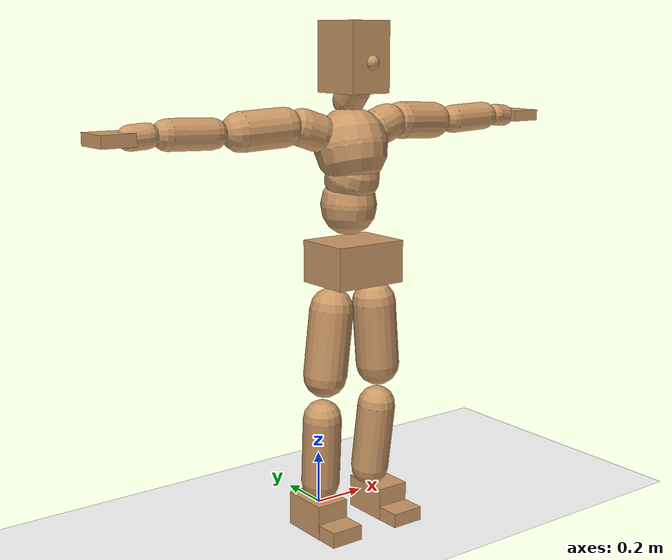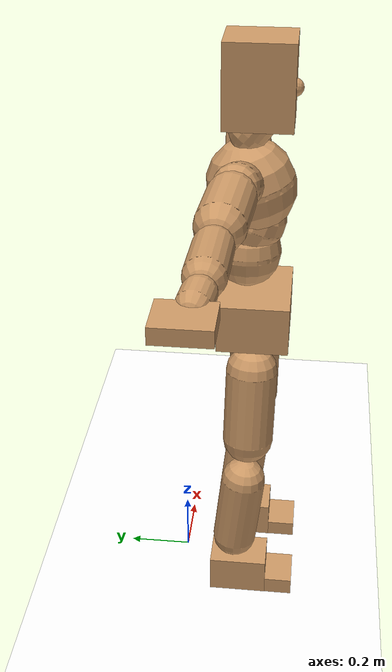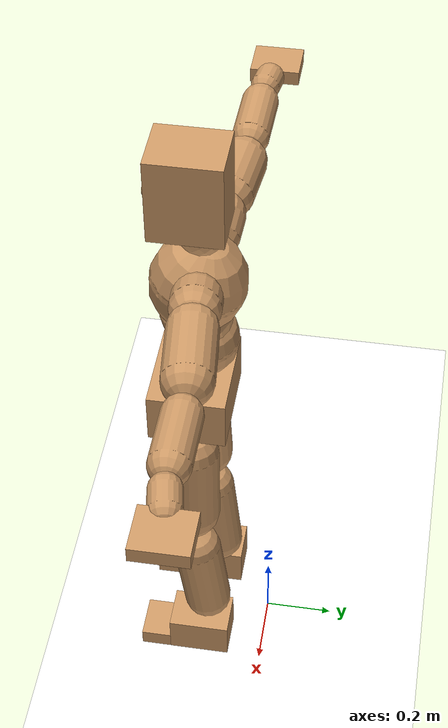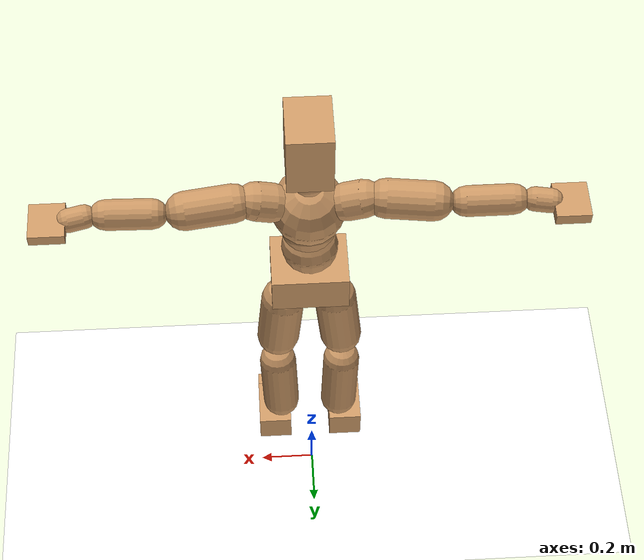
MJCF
<mujoco model="humanoid">
  <option integrator="implicitfast" />

  <visual>
    <global offwidth="1280" offheight="960" />
    <headlight active="1" ambient="0.34 0.34 0.34" diffuse="0.5 0.5 0.5" />
  </visual>

  <default>
    <joint damping="2" stiffness="2" armature="0.01" limited="true" solimplimit="0 .99 .01" />
    <geom condim="1" friction="0.7 0.005 0.0001" solimp=".99 .99 .003" solref="0.015 1" margin="0.001" rgba="0.8 0.6 .4 1" />
    <default class="smplcontact">
      <geom condim="3" friction="1. 0.005 0.0001" solref="0.015 1" solimp="0.98 0.98 0.001" priority="1" />
    </default>
    <default class="stiff_medium">
      <joint stiffness="10" />
    </default>
    <default class="stiff_medium_higher">
      <joint stiffness="50" />
    </default>
    <default class="stiff_high">
      <joint stiffness="100" />
    </default>
  </default>

  <asset>
    <texture type="skybox" builtin="gradient" rgb1="0.99 0.99 0.99" rgb2="0.608 0.828 0.892" width="100" />
    <texture builtin="flat" height="1278" mark="cross" markrgb="1 1 1" name="texgeom" random="0.01" rgb1="0.8 0.6 0.4" rgb2="0.8 0.6 0.4" type="cube" width="127" />
    <texture name="texplane" type="2d" builtin="checker" markrgb="1 1 1" rgb1="0.756 0.772 0.76" rgb2="0.6 0.6 0.6" width="100" height="100" />
    <material name="MatPlane" reflectance="0.5" texture="texplane" texrepeat="1 1" texuniform="true" />
    <material name="geom" texture="texgeom" texuniform="true" />
  </asset>

  <worldbody>
    <light name="tracking_light" pos="0 0 7" dir="0 0 -1" directional="true" cutoff="100" exponent="1" diffuse="1 1 1" specular="0.1 0.1 0.1" mode="trackcom" />
    <camera name="back" pos="0 3 2.4" xyaxes="-1 0 0 0 -1 2" mode="trackcom" />
    <camera name="side" pos="-3 0 2.4" xyaxes="0 -1 0 1 0 2" mode="trackcom" />
    <camera name="front_side" pos="-2.8 -2.8 0.8" xyaxes="0.5 -0.5 0 0.1 0.1 1" mode="trackcom" />
    <geom condim="3" name="floor" pos="0 0 0" rgba="1 1 1 1" size="100 100 .2" type="plane" material="MatPlane" />
    <body name="Pelvis" pos="-0.0018 -0.2233 1.00163" euler="90 0 0">
      <site name="Pelvis" size="0.01" />
      <freejoint name="Pelvis" />
      <geom type="box" pos="0 -0.01273 -0.00715" size="0.13897 0.0759593 0.1079" quat="1.0000 0.0000 0.0000 0.0000" density="3165.830099" name="Pelvis" />
      <body name="L_Hip" pos="0.09035 -0.096159 -0.00884">
        <joint name="L_Hip_x" type="hinge" pos="0 0 0" axis="1 0 0" stiffness="10" range="-160.0 22.92" class="stiff_medium" damping="15" />
        <joint name="L_Hip_y" type="hinge" pos="0 0 0" axis="0 1 0" stiffness="10" range="-70.0 70.0" class="stiff_medium" damping="10" />
        <joint name="L_Hip_z" type="hinge" pos="0 0 0" axis="0 0 1" stiffness="10" range="-28.65 90.0" class="stiff_medium" damping="10" />
        <geom type="capsule" density="2040.816327" fromto="0.00727715 -0.0789034 -0.00094704 0.0288445 -0.315829 -0.00378762" size="0.07995" name="L_Hip" />
        <body name="L_Knee" pos="0.0361217 -0.394733 -0.00473466">
          <joint name="L_Knee_x" type="hinge" pos="0 0 0" axis="1 0 0" range="-5.16 171.89" damping="8" />
          <joint name="L_Knee_y" type="hinge" pos="0 0 0" axis="0 1 0" range="-4.58 6.88" damping="8" />
          <joint name="L_Knee_z" type="hinge" pos="0 0 0" axis="0 0 1" range="-6.88 4.58" damping="8" />
          <geom type="capsule" density="1234.567901" fromto="-0.00283239 -0.0837467 -0.00913669 -0.0114593 -0.33498 -0.0368061" size="0.07033" name="L_Knee" />
          <body name="L_Ankle" pos="-0.0142917 -0.418727 -0.0459428">
            <joint name="L_Ankle_x" type="hinge" pos="0 0 0" axis="1 0 0" range="-45.84 45.84" class="stiff_medium" damping="6" />
            <joint name="L_Ankle_y" type="hinge" pos="0 0 0" axis="0 1 0" range="-74.48 22.92" class="stiff_medium" damping="3" />
            <joint name="L_Ankle_z" type="hinge" pos="0 0 0" axis="0 0 1" range="-4.58 4.58" class="stiff_medium" damping="6" />
            <geom type="box" pos="0.03029 -0.03107 0.0255873" size="0.06279 0.06032 0.0898729" quat="1.0000 0.0000 0.0000 0.0000" density="449.071558" name="L_Ankle" class="smplcontact" />
            <body name="L_Toe" pos="0.03432 -0.07254 0.126139">
              <joint name="L_Toe_x" type="hinge" pos="0 0 0" axis="1 0 0" range="-91.67 22.92" />
              <joint name="L_Toe_y" type="hinge" pos="0 0 0" axis="0 1 0" range="-4.58 4.58" />
              <joint name="L_Toe_z" type="hinge" pos="0 0 0" axis="0 0 1" range="-4.58 4.58" />
              <geom type="box" pos="-0.0039 0.00715 0.0262217" size="0.06214 0.026 0.0524435" quat="1.0000 0.0000 0.0000 0.0000" density="423.206892" name="L_Toe" class="smplcontact" />
            </body>
          </body>
        </body>
      </body>
      <body name="R_Hip" pos="-0.08801 -0.0952121 -0.00559">
        <joint name="R_Hip_x" type="hinge" pos="0 0 0" axis="1 0 0" stiffness="10" range="-160.0 22.92" class="stiff_medium" damping="15" />
        <joint name="R_Hip_y" type="hinge" pos="0 0 0" axis="0 1 0" stiffness="10" range="-70.0 70.0" class="stiff_medium" damping="10" />
        <joint name="R_Hip_z" type="hinge" pos="0 0 0" axis="0 0 1" stiffness="10" range="-90.0 28.65" class="stiff_medium" damping="10" />
        <geom type="capsule" density="2040.816327" fromto="-0.00811808 -0.0804813 -0.00190213 -0.0322104 -0.322036 -0.00747809" size="0.07878" name="R_Hip" />
        <body name="R_Knee" pos="-0.0403285 -0.402517 -0.00938022">
          <joint name="R_Knee_x" type="hinge" pos="0 0 0" axis="1 0 0" range="-5.16 171.89" damping="8" />
          <joint name="R_Knee_y" type="hinge" pos="0 0 0" axis="0 1 0" range="-6.88 4.58" damping="8" />
          <joint name="R_Knee_z" type="hinge" pos="0 0 0" axis="0 0 1" range="-4.58 6.88" damping="8" />
          <geom type="capsule" density="1234.567901" fromto="0.00338273 -0.0838475 -0.00895799 0.0132722 -0.335292 -0.0355753" size="0.07033" name="R_Knee" />
          <body name="R_Ankle" pos="0.0166549 -0.419139 -0.0445333">
            <joint name="R_Ankle_x" type="hinge" pos="0 0 0" axis="1 0 0" range="-45.84 45.84" class="stiff_medium" damping="6" />
            <joint name="R_Ankle_y" type="hinge" pos="0 0 0" axis="0 1 0" range="-22.92 74.48" class="stiff_medium" damping="3" />
            <joint name="R_Ankle_z" type="hinge" pos="0 0 0" axis="0 0 1" range="-4.58 4.58" class="stiff_medium" damping="6" />
            <geom type="box" pos="-0.02756 -0.02262 0.0270676" size="0.06279 0.06214 0.0914589" quat="1.0000 0.0000 0.0000 0.0000" density="434.700981" name="R_Ankle" class="smplcontact" />
            <body name="R_Toe" pos="-0.03302 -0.06253 0.130369">
              <joint name="R_Toe_x" type="hinge" pos="0 0 0" axis="1 0 0" range="-91.67 22.92" />
              <joint name="R_Toe_y" type="hinge" pos="0 0 0" axis="0 1 0" range="-4.58 4.58" />
              <joint name="R_Toe_z" type="hinge" pos="0 0 0" axis="0 0 1" range="-4.58 4.58" />
              <geom type="box" pos="0.00546 0.00585 0.0240013" size="0.06227 0.02808 0.0521263" quat="1.0000 0.0000 0.0000 0.0000" density="407.384095" name="R_Toe" class="smplcontact" />
            </body>
          </body>
        </body>
      </body>
      <body name="Torso" pos="-0.00325 0.114675 -0.03471">
        <joint name="Torso_x" type="hinge" pos="0 0 0" axis="1 0 0" range="-25.78 57.3" class="stiff_medium" damping="15" />
        <joint name="Torso_y" type="hinge" pos="0 0 0" axis="0 1 0" range="-57.3 57.3" class="stiff_high" damping="20" />
        <joint name="Torso_z" type="hinge" pos="0 0 0" axis="0 0 1" range="-34.38 34.38" class="stiff_high" damping="20" />
        <geom type="capsule" density="2040.816327" fromto="0.00269161 0.0639633 0.000538321 0.00321764 0.0781663 0.000643528" size="0.09997" name="Torso" />
        <body name="Spine" pos="0.00590833 0.142235 0.00118167">
          <joint name="Spine_x" type="hinge" pos="0 0 0" axis="1 0 0" stiffness="10" range="-25.78 57.3" class="stiff_medium" damping="15" />
          <joint name="Spine_y" type="hinge" pos="0 0 0" axis="0 1 0" stiffness="10" range="-57.3 57.3" class="stiff_high" damping="8" />
          <joint name="Spine_z" type="hinge" pos="0 0 0" axis="0 0 1" stiffness="20" range="-34.38 34.38" class="stiff_high" damping="12" />
          <geom type="capsule" density="2040.816327" fromto="0.000799156 0.0250653 0.0119381 0.000904363 0.0306412 0.0146734" size="0.09815" name="Spine" />
          <body name="Chest" pos="0.00170352 0.0557065 0.0266115">
            <joint name="Chest_x" type="hinge" pos="0 0 0" axis="1 0 0" stiffness="10" range="-25.78 57.3" class="stiff_medium" damping="15" />
            <joint name="Chest_y" type="hinge" pos="0 0 0" axis="0 1 0" stiffness="10" range="-57.3 57.3" class="stiff_high" damping="8" />
            <joint name="Chest_z" type="hinge" pos="0 0 0" axis="0 0 1" stiffness="20" range="-34.38 34.38" class="stiff_high" damping="12" />
            <geom type="capsule" density="2040.816327" fromto="-0.00105814 0.0717692 -0.0181275 -0.00116335 0.0876554 -0.0222305" size="0.13026" name="Chest" />
            <body name="Neck" pos="-0.00329368 0.225776 -0.0422637">
              <joint name="Neck_x" type="hinge" pos="0 0 0" axis="1 0 0" range="-28.65 57.3" class="stiff_medium_higher" damping="10" />
              <joint name="Neck_y" type="hinge" pos="0 0 0" axis="0 1 0" range="-40.11 40.11" class="stiff_medium_higher" damping="10" />
              <joint name="Neck_z" type="hinge" pos="0 0 0" axis="0 0 1" range="-40.11 40.11" class="stiff_medium_higher" damping="10" />
              <geom type="capsule" density="1000" fromto="0.00104873 0.0137416 0.0108959 0.00432645 0.0549774 0.0434616" size="0.0569634" name="Neck" />
              <body name="Head" pos="0.0055067 0.0687299 0.0542355">
                <joint name="Head_x" type="hinge" pos="0 0 0" axis="1 0 0" range="-28.65 57.3" class="stiff_medium_higher" damping="2" />
                <joint name="Head_y" type="hinge" pos="0 0 0" axis="0 1 0" range="-40.11 40.11" class="stiff_medium_higher" damping="2" />
                <joint name="Head_z" type="hinge" pos="0 0 0" axis="0 0 1" range="-40.11 40.11" class="stiff_medium_higher" damping="2" />
                <geom type="box" pos="-0.0054873 0.0926219 -0.0151554" size="0.0791739 0.122016 0.099294" quat="1.0000 0.0000 0.0000 0.0000" density="1018.069894" name="Head" />
                <geom type="capsule" name="nose" size="0.02613 0.013065" pos="0 0.074013 0.065325" quat="1 0 0 0" mass="0" contype="0" conaffinity="0" />
              </body>
            </body>
            <body name="L_Thorax" pos="0.10264 0.127999 -0.0365272">
              <joint name="L_Thorax_x" type="hinge" pos="0 0 0" axis="1 0 0" range="-10.89 4.58" class="stiff_medium_higher" damping="20" />
              <joint name="L_Thorax_y" type="hinge" pos="0 0 0" axis="0 1 0" range="-28.65 17.19" class="stiff_medium_higher" damping="20" />
              <joint name="L_Thorax_z" type="hinge" pos="0 0 0" axis="0 0 1" range="-31.51 40.11" class="stiff_medium_higher" damping="20" />
              <geom type="capsule" density="1000" fromto="0.0191469 0.00641737 -0.00190192 0.0765898 0.0256702 -0.00747788" size="0.06773" name="L_Thorax" />
              <body name="L_Shoulder" pos="0.0957367 0.0320876 -0.00937979">
                <joint name="L_Shoulder_x" type="hinge" pos="0 0 0" axis="1 0 0" range="-97.4 97.4" class="stiff_medium" damping="6" />
                <joint name="L_Shoulder_y" type="hinge" pos="0 0 0" axis="0 1 0" range="-108.86 80.21" class="stiff_medium" damping="6" />
                <joint name="L_Shoulder_z" type="hinge" pos="0 0 0" axis="0 0 1" range="-97.4 85.94" class="stiff_medium" damping="6" />
                <geom type="capsule" density="1000" fromto="0.0546014 -0.00275226 -0.00578715 0.218514 -0.010748 -0.0231463" size="0.06721" name="L_Shoulder" />
                <body name="L_Elbow" pos="0.273115 -0.0135002 -0.0289334">
                  <joint name="L_Elbow_x" type="hinge" pos="0 0 0" axis="1 0 0" range="-17.19 4.58" damping="5" />
                  <joint name="L_Elbow_y" type="hinge" pos="0 0 0" axis="0 1 0" range="-180.0 17.19" damping="5" />
                  <joint name="L_Elbow_z" type="hinge" pos="0 0 0" axis="0 0 1" range="-100.84 4.58" damping="5" />
                  <geom type="capsule" density="1000" fromto="0.052393 0.00189432 -0.000202227 0.209782 0.00757548 -0.000938674" size="0.05265" name="L_Elbow" />
                  <body name="L_Wrist" pos="0.262175 0.0094698 -0.0012709">
                    <joint name="L_Wrist_x" type="hinge" pos="0 0 0" axis="1 0 0" range="-180.0 22.92" />
                    <joint name="L_Wrist_y" type="hinge" pos="0 0 0" axis="0 1 0" range="-17.19 17.19" />
                    <joint name="L_Wrist_z" type="hinge" pos="0 0 0" axis="0 0 1" range="-22.92 22.92" />
                    <geom type="capsule" density="1000" fromto="0.0176755 -0.00167512 -0.00315634 0.0706997 -0.00683025 -0.0126249" size="0.04134" name="L_Wrist" class="smplcontact" />
                    <body name="L_Hand" pos="0.0883772 -0.00863556 -0.0156516">
                      <joint name="L_Hand_x" type="hinge" pos="0 0 0" axis="1 0 0" range="-17.19 17.19" />
                      <joint name="L_Hand_y" type="hinge" pos="0 0 0" axis="0 1 0" range="-51.57 51.57" />
                      <joint name="L_Hand_z" type="hinge" pos="0 0 0" axis="0 0 1" range="-91.67 91.67" />
                      <geom type="box" pos="0.0518669 0.0013 -0.00754" size="0.061546 0.02054 0.06994" quat="1.0000 0.0000 0.0000 0.0000" density="400.552564" name="L_Hand" class="smplcontact" />
                    </body>
                  </body>
                </body>
              </body>
            </body>
            <body name="R_Thorax" pos="-0.106141 0.124386 -0.0424176">
              <joint name="R_Thorax_x" type="hinge" pos="0 0 0" axis="1 0 0" range="-10.89 4.58" class="stiff_medium_higher" damping="20" />
              <joint name="R_Thorax_y" type="hinge" pos="0 0 0" axis="0 1 0" range="-17.19 28.65" class="stiff_medium_higher" damping="20" />
              <joint name="R_Thorax_z" type="hinge" pos="0 0 0" axis="0 0 1" range="-40.11 31.51" class="stiff_medium_higher" damping="20" />
              <geom type="capsule" density="1000" fromto="-0.0202004 0.00683868 -0.00188552 -0.0807995 0.027354 -0.0076719" size="0.06643" name="R_Thorax" />
              <body name="R_Shoulder" pos="-0.100992 0.0343201 -0.00955671">
                <joint name="R_Shoulder_x" type="hinge" pos="0 0 0" axis="1 0 0" range="-97.4 97.4" class="stiff_medium" damping="6" />
                <joint name="R_Shoulder_y" type="hinge" pos="0 0 0" axis="0 1 0" range="-80.21 108.86" class="stiff_medium" damping="6" />
                <joint name="R_Shoulder_z" type="hinge" pos="0 0 0" axis="0 0 1" range="-85.94 97.4" class="stiff_medium" damping="6" />
                <geom type="capsule" density="1000" fromto="-0.0533386 -0.00284965 -0.00453344 -0.213568 -0.0112662 -0.0179999" size="0.06903" name="R_Shoulder" />
                <body name="R_Elbow" pos="-0.266908 -0.0139859 -0.0225334">
                  <joint name="R_Elbow_x" type="hinge" pos="0 0 0" axis="1 0 0" range="-17.19 4.58" damping="5" />
                  <joint name="R_Elbow_y" type="hinge" pos="0 0 0" axis="0 1 0" range="-17.19 180.0" damping="5" />
                  <joint name="R_Elbow_z" type="hinge" pos="0 0 0" axis="0 0 1" range="-4.58 100.84" damping="5" />
                  <geom type="capsule" density="1000" fromto="-0.0537602 0.00169933 -0.00115691 -0.214832 0.00653884 -0.00462873" size="0.05304" name="R_Elbow" />
                  <body name="R_Wrist" pos="-0.268591 0.00823815 -0.00591563">
                    <joint name="R_Wrist_x" type="hinge" pos="0 0 0" axis="1 0 0" range="-180.0 22.92" />
                    <joint name="R_Wrist_y" type="hinge" pos="0 0 0" axis="0 1 0" range="-17.19 17.19" />
                    <joint name="R_Wrist_z" type="hinge" pos="0 0 0" axis="0 0 1" range="-22.92 22.92" />
                    <geom type="capsule" density="1000" fromto="-0.0177794 -0.00125478 -0.00221855 -0.0712244 -0.00514743 -0.00874137" size="0.04238" name="R_Wrist" class="smplcontact" />
                    <body name="R_Hand" pos="-0.0890068 -0.00640242 -0.0108303">
                      <joint name="R_Hand_x" type="hinge" pos="0 0 0" axis="1 0 0" range="-17.19 17.19" />
                      <joint name="R_Hand_y" type="hinge" pos="0 0 0" axis="0 1 0" range="-51.57 51.57" />
                      <joint name="R_Hand_z" type="hinge" pos="0 0 0" axis="0 0 1" range="-91.67 91.67" />
                      <geom type="box" pos="-0.0486055 -0.00117 -0.01027" size="0.0598627 0.02132 0.07098" quat="1.0000 0.0000 0.0000 0.0000" density="403.679611" name="R_Hand" class="smplcontact" />
                    </body>
                  </body>
                </body>
              </body>
            </body>
          </body>
        </body>
      </body>
    </body>
  </worldbody>
  <actuator>
    <general name="L_Hip_x" joint="L_Hip_x" biastype="affine" gainprm="287.33006409732246" biasprm="-215.3247604770444 -180 -2.0" ctrllimited="true" ctrlrange="-1 1" forcerange="-360 360" />
    <general name="L_Hip_y" joint="L_Hip_y" biastype="affine" gainprm="219.9114857512855" biasprm="0.0 -180 -2.0" ctrllimited="true" ctrlrange="-1 1" forcerange="-360 360" />
    <general name="L_Hip_z" joint="L_Hip_z" biastype="affine" gainprm="186.3749841742145" biasprm="96.3683546488669 -180 -2.0" ctrllimited="true" ctrlrange="-1 1" forcerange="-360 360" />
    <general name="L_Knee_x" joint="L_Knee_x" biastype="affine" gainprm="278.10948965903646" biasprm="261.8988715665131 -180 -2.0" ctrllimited="true" ctrlrange="-1 1" forcerange="-360 360" />
    <general name="L_Knee_y" joint="L_Knee_y" biastype="affine" gainprm="18.001325905069514" biasprm="3.612831551628262 -180 -2.0" ctrllimited="true" ctrlrange="-1 1" forcerange="-360 360" />
    <general name="L_Knee_z" joint="L_Knee_z" biastype="affine" gainprm="18.001325905069514" biasprm="-3.612831551628262 -180 -2.0" ctrllimited="true" ctrlrange="-1 1" forcerange="-360 360" />
    <general name="L_Ankle_x" joint="L_Ankle_x" biastype="affine" gainprm="72.00530362027807" biasprm="0.0 -90 -2.0" ctrllimited="true" ctrlrange="-1 1" forcerange="-180 180" />
    <general name="L_Ankle_y" joint="L_Ankle_y" biastype="affine" gainprm="76.49778111491148" biasprm="-40.49512930477244 -90 -2.0" ctrllimited="true" ctrlrange="-1 1" forcerange="-180 180" />
    <general name="L_Ankle_z" joint="L_Ankle_z" biastype="affine" gainprm="7.1942471767206255" biasprm="0.0 -90 -2.0" ctrllimited="true" ctrlrange="-1 1" forcerange="-180 180" />
    <general name="L_Toe_x" joint="L_Toe_x" biastype="affine" gainprm="71.99902043497087" biasprm="-43.19689898685965 -72 -0.8" ctrllimited="true" ctrlrange="-1 1" forcerange="-144 144" />
    <general name="L_Toe_y" joint="L_Toe_y" biastype="affine" gainprm="5.755397741376501" biasprm="0.0 -72 -0.8" ctrllimited="true" ctrlrange="-1 1" forcerange="-144 144" />
    <general name="L_Toe_z" joint="L_Toe_z" biastype="affine" gainprm="5.755397741376501" biasprm="0.0 -72 -0.8" ctrllimited="true" ctrlrange="-1 1" forcerange="-144 144" />
    <general name="R_Hip_x" joint="R_Hip_x" biastype="affine" gainprm="287.33006409732246" biasprm="-215.3247604770444 -180 -2.0" ctrllimited="true" ctrlrange="-1 1" forcerange="-360 360" />
    <general name="R_Hip_y" joint="R_Hip_y" biastype="affine" gainprm="219.9114857512855" biasprm="0.0 -180 -2.0" ctrllimited="true" ctrlrange="-1 1" forcerange="-360 360" />
    <general name="R_Hip_z" joint="R_Hip_z" biastype="affine" gainprm="186.3749841742145" biasprm="-96.3683546488669 -180 -2.0" ctrllimited="true" ctrlrange="-1 1" forcerange="-360 360" />
    <general name="R_Knee_x" joint="R_Knee_x" biastype="affine" gainprm="278.10948965903646" biasprm="261.8988715665131 -180 -2.0" ctrllimited="true" ctrlrange="-1 1" forcerange="-360 360" />
    <general name="R_Knee_y" joint="R_Knee_y" biastype="affine" gainprm="18.001325905069514" biasprm="-3.612831551628262 -180 -2.0" ctrllimited="true" ctrlrange="-1 1" forcerange="-360 360" />
    <general name="R_Knee_z" joint="R_Knee_z" biastype="affine" gainprm="18.001325905069514" biasprm="3.612831551628262 -180 -2.0" ctrllimited="true" ctrlrange="-1 1" forcerange="-360 360" />
    <general name="R_Ankle_x" joint="R_Ankle_x" biastype="affine" gainprm="72.00530362027807" biasprm="0.0 -90 -2.0" ctrllimited="true" ctrlrange="-1 1" forcerange="-180 180" />
    <general name="R_Ankle_y" joint="R_Ankle_y" biastype="affine" gainprm="76.49778111491148" biasprm="40.49512930477244 -90 -2.0" ctrllimited="true" ctrlrange="-1 1" forcerange="-180 180" />
    <general name="R_Ankle_z" joint="R_Ankle_z" biastype="affine" gainprm="7.1942471767206255" biasprm="0.0 -90 -2.0" ctrllimited="true" ctrlrange="-1 1" forcerange="-180 180" />
    <general name="R_Toe_x" joint="R_Toe_x" biastype="affine" gainprm="71.99902043497087" biasprm="-43.19689898685965 -72 -0.8" ctrllimited="true" ctrlrange="-1 1" forcerange="-144 144" />
    <general name="R_Toe_y" joint="R_Toe_y" biastype="affine" gainprm="5.755397741376501" biasprm="0.0 -72 -0.8" ctrllimited="true" ctrlrange="-1 1" forcerange="-144 144" />
    <general name="R_Toe_z" joint="R_Toe_z" biastype="affine" gainprm="5.755397741376501" biasprm="0.0 -72 -0.8" ctrllimited="true" ctrlrange="-1 1" forcerange="-144 144" />
    <general name="Torso_x" joint="Torso_x" biastype="affine" gainprm="174.00234510682668" biasprm="66.0153336274335 -240 -4.0" ctrllimited="true" ctrlrange="-1 1" forcerange="-360 360" />
    <general name="Torso_y" joint="Torso_y" biastype="affine" gainprm="240.0176787342602" biasprm="0.0 -240 -4.0" ctrllimited="true" ctrlrange="-1 1" forcerange="-360 360" />
    <general name="Torso_z" joint="Torso_z" biastype="affine" gainprm="144.01060724055614" biasprm="0.0 -240 -4.0" ctrllimited="true" ctrlrange="-1 1" forcerange="-360 360" />
    <general name="Spine_x" joint="Spine_x" biastype="affine" gainprm="174.00234510682668" biasprm="66.0153336274335 -240 -4.0" ctrllimited="true" ctrlrange="-1 1" forcerange="-360 360" />
    <general name="Spine_y" joint="Spine_y" biastype="affine" gainprm="240.0176787342602" biasprm="0.0 -240 -4.0" ctrllimited="true" ctrlrange="-1 1" forcerange="-360 360" />
    <general name="Spine_z" joint="Spine_z" biastype="affine" gainprm="144.01060724055614" biasprm="0.0 -240 -4.0" ctrllimited="true" ctrlrange="-1 1" forcerange="-360 360" />
    <general name="Chest_x" joint="Chest_x" biastype="affine" gainprm="174.00234510682668" biasprm="66.0153336274335 -240 -4.0" ctrllimited="true" ctrlrange="-1 1" forcerange="-360 360" />
    <general name="Chest_y" joint="Chest_y" biastype="affine" gainprm="240.0176787342602" biasprm="0.0 -240 -4.0" ctrllimited="true" ctrlrange="-1 1" forcerange="-360 360" />
    <general name="Chest_z" joint="Chest_z" biastype="affine" gainprm="144.01060724055614" biasprm="0.0 -240 -4.0" ctrllimited="true" ctrlrange="-1 1" forcerange="-360 360" />
    <general name="Neck_x" joint="Neck_x" biastype="affine" gainprm="27.00198885760427" biasprm="9.000662952534757 -36 -0.8" ctrllimited="true" ctrlrange="-1 1" forcerange="-72 72" />
    <general name="Neck_y" joint="Neck_y" biastype="affine" gainprm="25.20185626709732" biasprm="0.0 -36 -0.8" ctrllimited="true" ctrlrange="-1 1" forcerange="-72 72" />
    <general name="Neck_z" joint="Neck_z" biastype="affine" gainprm="25.20185626709732" biasprm="0.0 -36 -0.8" ctrllimited="true" ctrlrange="-1 1" forcerange="-72 72" />
    <general name="Head_x" joint="Head_x" biastype="affine" gainprm="18.001325905069514" biasprm="6.000441968356505 -24 -0.8" ctrllimited="true" ctrlrange="-1 1" forcerange="-48 48" />
    <general name="Head_y" joint="Head_y" biastype="affine" gainprm="16.801237511398213" biasprm="0.0 -24 -0.8" ctrllimited="true" ctrlrange="-1 1" forcerange="-48 48" />
    <general name="Head_z" joint="Head_z" biastype="affine" gainprm="16.801237511398213" biasprm="0.0 -24 -0.8" ctrllimited="true" ctrlrange="-1 1" forcerange="-48 48" />
    <general name="L_Thorax_x" joint="L_Thorax_x" biastype="affine" gainprm="16.200146117011364" biasprm="-6.6078165480505335 -120 -1.6" ctrllimited="true" ctrlrange="-1 1" forcerange="-240 240" />
    <general name="L_Thorax_y" joint="L_Thorax_y" biastype="affine" gainprm="48.00353574685204" biasprm="-12.00088393671301 -120 -1.6" ctrllimited="true" ctrlrange="-1 1" forcerange="-240 240" />
    <general name="L_Thorax_z" joint="L_Thorax_z" biastype="affine" gainprm="75.00028861670033" biasprm="9.00589894029074 -120 -1.6" ctrllimited="true" ctrlrange="-1 1" forcerange="-240 240" />
    <general name="L_Shoulder_x" joint="L_Shoulder_x" biastype="affine" gainprm="81.5976331892389" biasprm="0.0 -48 -1.6" ctrllimited="true" ctrlrange="-1 1" forcerange="-96 96" />
    <general name="L_Shoulder_y" joint="L_Shoulder_y" biastype="affine" gainprm="79.19745640189629" biasprm="-12.00088393671301 -48 -1.6" ctrllimited="true" ctrlrange="-1 1" forcerange="-96 96" />
    <general name="L_Shoulder_z" joint="L_Shoulder_z" biastype="affine" gainprm="76.79727961455369" biasprm="-4.800353574685214 -48 -1.6" ctrllimited="true" ctrlrange="-1 1" forcerange="-96 96" />
    <general name="L_Elbow_x" joint="L_Elbow_x" biastype="affine" gainprm="13.67849441372996" biasprm="-7.923096672353461 -72 -0.8" ctrllimited="true" ctrlrange="-1 1" forcerange="-144 144" />
    <general name="L_Elbow_y" joint="L_Elbow_y" biastype="affine" gainprm="123.89813107227425" biasprm="-102.29653998619085 -72 -0.8" ctrllimited="true" ctrlrange="-1 1" forcerange="-144 144" />
    <general name="L_Elbow_z" joint="L_Elbow_z" biastype="affine" gainprm="66.23733950828719" biasprm="-60.4819417669107 -72 -0.8" ctrllimited="true" ctrlrange="-1 1" forcerange="-144 144" />
    <general name="L_Wrist_x" joint="L_Wrist_x" biastype="affine" gainprm="21.24973270888136" biasprm="-16.449379134196157 -12 -0.8" ctrllimited="true" ctrlrange="-1 1" forcerange="-24 24" />
    <general name="L_Wrist_y" joint="L_Wrist_y" biastype="affine" gainprm="3.6002651810139037" biasprm="0.0 -12 -0.8" ctrllimited="true" ctrlrange="-1 1" forcerange="-24 24" />
    <general name="L_Wrist_z" joint="L_Wrist_z" biastype="affine" gainprm="4.800353574685205" biasprm="0.0 -12 -0.8" ctrllimited="true" ctrlrange="-1 1" forcerange="-24 24" />
    <general name="L_Hand_x" joint="L_Hand_x" biastype="affine" gainprm="3.6002651810139037" biasprm="0.0 -12 -0.8" ctrllimited="true" ctrlrange="-1 1" forcerange="-24 24" />
    <general name="L_Hand_y" joint="L_Hand_y" biastype="affine" gainprm="10.800795543041708" biasprm="0.0 -12 -0.8" ctrllimited="true" ctrlrange="-1 1" forcerange="-24 24" />
    <general name="L_Hand_z" joint="L_Hand_z" biastype="affine" gainprm="19.199319903638422" biasprm="0.0 -12 -0.8" ctrllimited="true" ctrlrange="-1 1" forcerange="-24 24" />
    <general name="R_Thorax_x" joint="R_Thorax_x" biastype="affine" gainprm="16.200146117011364" biasprm="-6.6078165480505335 -120 -1.6" ctrllimited="true" ctrlrange="-1 1" forcerange="-240 240" />
    <general name="R_Thorax_y" joint="R_Thorax_y" biastype="affine" gainprm="48.00353574685204" biasprm="12.000883936713002 -120 -1.6" ctrllimited="true" ctrlrange="-1 1" forcerange="-240 240" />
    <general name="R_Thorax_z" joint="R_Thorax_z" biastype="affine" gainprm="75.00028861670033" biasprm="-9.00589894029074 -120 -1.6" ctrllimited="true" ctrlrange="-1 1" forcerange="-240 240" />
    <general name="R_Shoulder_x" joint="R_Shoulder_x" biastype="affine" gainprm="81.5976331892389" biasprm="0.0 -48 -1.6" ctrllimited="true" ctrlrange="-1 1" forcerange="-96 96" />
    <general name="R_Shoulder_y" joint="R_Shoulder_y" biastype="affine" gainprm="79.19745640189629" biasprm="12.00088393671301 -48 -1.6" ctrllimited="true" ctrlrange="-1 1" forcerange="-96 96" />
    <general name="R_Shoulder_z" joint="R_Shoulder_z" biastype="affine" gainprm="76.79727961455369" biasprm="4.800353574685204 -48 -1.6" ctrllimited="true" ctrlrange="-1 1" forcerange="-96 96" />
    <general name="R_Elbow_x" joint="R_Elbow_x" biastype="affine" gainprm="13.67849441372996" biasprm="-7.923096672353461 -72 -0.8" ctrllimited="true" ctrlrange="-1 1" forcerange="-144 144" />
    <general name="R_Elbow_y" joint="R_Elbow_y" biastype="affine" gainprm="123.89813107227425" biasprm="102.29653998619085 -72 -0.8" ctrllimited="true" ctrlrange="-1 1" forcerange="-144 144" />
    <general name="R_Elbow_z" joint="R_Elbow_z" biastype="affine" gainprm="66.23733950828719" biasprm="60.481941766910694 -72 -0.8" ctrllimited="true" ctrlrange="-1 1" forcerange="-144 144" />
    <general name="R_Wrist_x" joint="R_Wrist_x" biastype="affine" gainprm="21.24973270888136" biasprm="-16.449379134196157 -12 -0.8" ctrllimited="true" ctrlrange="-1 1" forcerange="-24 24" />
    <general name="R_Wrist_y" joint="R_Wrist_y" biastype="affine" gainprm="3.6002651810139037" biasprm="0.0 -12 -0.8" ctrllimited="true" ctrlrange="-1 1" forcerange="-24 24" />
    <general name="R_Wrist_z" joint="R_Wrist_z" biastype="affine" gainprm="4.800353574685205" biasprm="0.0 -12 -0.8" ctrllimited="true" ctrlrange="-1 1" forcerange="-24 24" />
    <general name="R_Hand_x" joint="R_Hand_x" biastype="affine" gainprm="3.6002651810139037" biasprm="0.0 -12 -0.8" ctrllimited="true" ctrlrange="-1 1" forcerange="-24 24" />
    <general name="R_Hand_y" joint="R_Hand_y" biastype="affine" gainprm="10.800795543041708" biasprm="0.0 -12 -0.8" ctrllimited="true" ctrlrange="-1 1" forcerange="-24 24" />
    <general name="R_Hand_z" joint="R_Hand_z" biastype="affine" gainprm="19.199319903638422" biasprm="0.0 -12 -0.8" ctrllimited="true" ctrlrange="-1 1" forcerange="-24 24" />
  </actuator>
  <contact>
    <exclude body1="Torso" body2="Chest" />
    <exclude body1="Head" body2="Chest" />
    <exclude body1="R_Knee" body2="R_Toe" />
    <exclude body1="R_Knee" body2="L_Ankle" />
    <exclude body1="R_Knee" body2="L_Toe" />
    <exclude body1="L_Knee" body2="L_Toe" />
    <exclude body1="L_Knee" body2="R_Ankle" />
    <exclude body1="L_Knee" body2="R_Toe" />
    <exclude body1="L_Shoulder" body2="Chest" />
    <exclude body1="R_Shoulder" body2="Chest" />
  </contact>
  <sensor>
    <framelinvel name="sensor_Pelvis_framelinvel" objtype="xbody" objname="Pelvis" />
    <framelinvel name="sensor_L_Hip_framelinvel" objtype="xbody" objname="L_Hip" />
    <framelinvel name="sensor_L_Knee_framelinvel" objtype="xbody" objname="L_Knee" />
    <framelinvel name="sensor_L_Ankle_framelinvel" objtype="xbody" objname="L_Ankle" />
    <framelinvel name="sensor_L_Toe_framelinvel" objtype="xbody" objname="L_Toe" />
    <framelinvel name="sensor_R_Hip_framelinvel" objtype="xbody" objname="R_Hip" />
    <framelinvel name="sensor_R_Knee_framelinvel" objtype="xbody" objname="R_Knee" />
    <framelinvel name="sensor_R_Ankle_framelinvel" objtype="xbody" objname="R_Ankle" />
    <framelinvel name="sensor_R_Toe_framelinvel" objtype="xbody" objname="R_Toe" />
    <framelinvel name="sensor_Torso_framelinvel" objtype="xbody" objname="Torso" />
    <framelinvel name="sensor_Spine_framelinvel" objtype="xbody" objname="Spine" />
    <framelinvel name="sensor_Chest_framelinvel" objtype="xbody" objname="Chest" />
    <framelinvel name="sensor_Neck_framelinvel" objtype="xbody" objname="Neck" />
    <framelinvel name="sensor_Head_framelinvel" objtype="xbody" objname="Head" />
    <framelinvel name="sensor_L_Thorax_framelinvel" objtype="xbody" objname="L_Thorax" />
    <framelinvel name="sensor_L_Shoulder_framelinvel" objtype="xbody" objname="L_Shoulder" />
    <framelinvel name="sensor_L_Elbow_framelinvel" objtype="xbody" objname="L_Elbow" />
    <framelinvel name="sensor_L_Wrist_framelinvel" objtype="xbody" objname="L_Wrist" />
    <framelinvel name="sensor_L_Hand_framelinvel" objtype="xbody" objname="L_Hand" />
    <framelinvel name="sensor_R_Thorax_framelinvel" objtype="xbody" objname="R_Thorax" />
    <framelinvel name="sensor_R_Shoulder_framelinvel" objtype="xbody" objname="R_Shoulder" />
    <framelinvel name="sensor_R_Elbow_framelinvel" objtype="xbody" objname="R_Elbow" />
    <framelinvel name="sensor_R_Wrist_framelinvel" objtype="xbody" objname="R_Wrist" />
    <framelinvel name="sensor_R_Hand_framelinvel" objtype="xbody" objname="R_Hand" />
    <frameangvel name="sensor_Pelvis_frameangvel" objtype="xbody" objname="Pelvis" />
    <frameangvel name="sensor_L_Hip_frameangvel" objtype="xbody" objname="L_Hip" />
    <frameangvel name="sensor_L_Knee_frameangvel" objtype="xbody" objname="L_Knee" />
    <frameangvel name="sensor_L_Ankle_frameangvel" objtype="xbody" objname="L_Ankle" />
    <frameangvel name="sensor_L_Toe_frameangvel" objtype="xbody" objname="L_Toe" />
    <frameangvel name="sensor_R_Hip_frameangvel" objtype="xbody" objname="R_Hip" />
    <frameangvel name="sensor_R_Knee_frameangvel" objtype="xbody" objname="R_Knee" />
    <frameangvel name="sensor_R_Ankle_frameangvel" objtype="xbody" objname="R_Ankle" />
    <frameangvel name="sensor_R_Toe_frameangvel" objtype="xbody" objname="R_Toe" />
    <frameangvel name="sensor_Torso_frameangvel" objtype="xbody" objname="Torso" />
    <frameangvel name="sensor_Spine_frameangvel" objtype="xbody" objname="Spine" />
    <frameangvel name="sensor_Chest_frameangvel" objtype="xbody" objname="Chest" />
    <frameangvel name="sensor_Neck_frameangvel" objtype="xbody" objname="Neck" />
    <frameangvel name="sensor_Head_frameangvel" objtype="xbody" objname="Head" />
    <frameangvel name="sensor_L_Thorax_frameangvel" objtype="xbody" objname="L_Thorax" />
    <frameangvel name="sensor_L_Shoulder_frameangvel" objtype="xbody" objname="L_Shoulder" />
    <frameangvel name="sensor_L_Elbow_frameangvel" objtype="xbody" objname="L_Elbow" />
    <frameangvel name="sensor_L_Wrist_frameangvel" objtype="xbody" objname="L_Wrist" />
    <frameangvel name="sensor_L_Hand_frameangvel" objtype="xbody" objname="L_Hand" />
    <frameangvel name="sensor_R_Thorax_frameangvel" objtype="xbody" objname="R_Thorax" />
    <frameangvel name="sensor_R_Shoulder_frameangvel" objtype="xbody" objname="R_Shoulder" />
    <frameangvel name="sensor_R_Elbow_frameangvel" objtype="xbody" objname="R_Elbow" />
    <frameangvel name="sensor_R_Wrist_frameangvel" objtype="xbody" objname="R_Wrist" />
    <frameangvel name="sensor_R_Hand_frameangvel" objtype="xbody" objname="R_Hand" />
    <subtreelinvel name="Chest_subtreelinvel" body="Chest" />
    <gyro name="Pelvis_gyro" site="Pelvis" />
  </sensor>
</mujoco>
